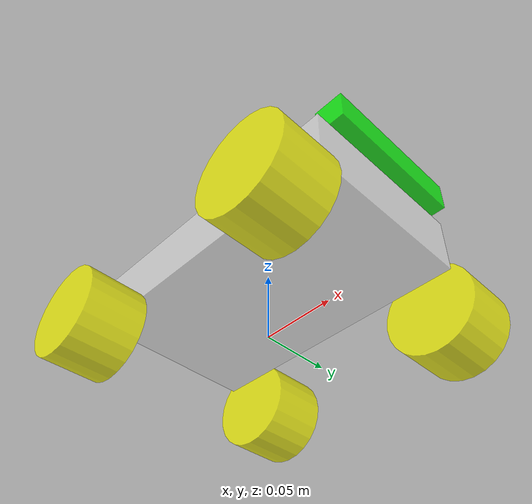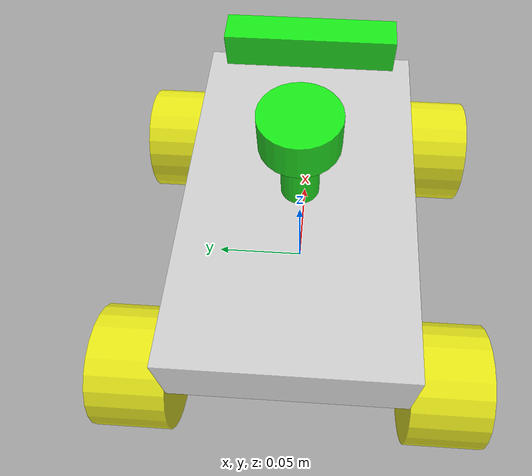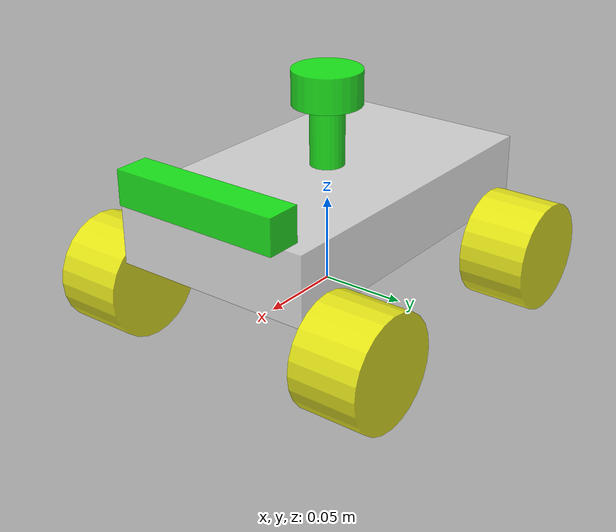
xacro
<?xml version="1.0"?>
<robot xmlns:xacro="http://www.ros.org/wiki/xacro" name="fishbot">
    <!-- 复用基础底盘和传感器模块 -->
    <xacro:include filename="$(find gazebo_simulation)/urdf/robot_ackermann/base.urdf.xacro" />
    <xacro:include filename="$(find gazebo_simulation)/urdf/robot_ackermann/sensor/imu.urdf.xacro" />
    <xacro:include filename="$(find gazebo_simulation)/urdf/robot_ackermann/sensor/laser.urdf.xacro" />
    <xacro:include filename="$(find gazebo_simulation)/urdf/robot_ackermann/sensor/camera.urdf.xacro" />

    <!-- 阿克曼转向执行器 -->
    <xacro:include filename="$(find gazebo_simulation)/urdf/robot_ackermann/actuator/steering_wheel.urdf.xacro" />
    <xacro:include filename="$(find gazebo_simulation)/urdf/robot_ackermann/actuator/rear_wheel.urdf.xacro" />

    <!-- Gazebo 传感器插件 -->
    <xacro:include filename="$(find gazebo_simulation)/urdf/robot_ackermann/plugins/gazebo_sensor_plugin.xacro" />

    <!-- ROS 2 Control -->
    <xacro:include filename="$(find gazebo_simulation)/urdf/robot_ackermann/robot.ros2_control.xacro" />

    <!-- 实例化 -->
    <xacro:base_xacro length="0.20" width="0.12" height="0.04" />
    <xacro:imu_xacro xyz="0 0 0.006" />
    <xacro:laser_xacro xyz="0 0 0.04" />
    <xacro:camera_xacro xyz="0.10 0 0.03" />

    <!-- 前转向轮 (wheelbase/2 = 0.08m 前方) -->
    <xacro:steering_wheel_xacro wheel_name="front_left_wheel" xyz="0.08 0.08 -0.04" />
    <xacro:steering_wheel_xacro wheel_name="front_right_wheel" xyz="0.08 -0.08 -0.04" />

    <!-- 后驱动轮 (wheelbase/2 = 0.08m 后方) -->
    <xacro:rear_wheel_xacro wheel_name="rear_left_wheel" xyz="-0.08 0.08 -0.04" />
    <xacro:rear_wheel_xacro wheel_name="rear_right_wheel" xyz="-0.08 -0.08 -0.04" />

    <xacro:gazebo_sensor_plugin />
    <xacro:robot_ros2_control />
</robot>

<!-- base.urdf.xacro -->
<robot xmlns:xacro="http://www.ros.org/wiki/xacro" >
<xacro:include filename="$(find gazebo_simulation)/urdf/robot_ackermann/common_inertia.xacro" />
    <xacro:macro name="base_xacro" params="length width height">
        <link name="base_footprint" />
        <link name="base_link">
            <visual>
                <origin xyz="0 0 0" rpy="0 0 0" />
                <geometry>
                    <box size="${length} ${width} ${height}" />
                </geometry>
                <material name="white">
                    <color rgba="1.0 1.0 1.0 0.5" />
                </material>
            </visual>
            <collision>
                <origin xyz="0 0 0" rpy="0 0 0" />
                <geometry>
                    <box size="${length} ${width} ${height}" />
                </geometry>
                <material name="white">
                    <color rgba="1.0 1.0 1.0 0.5" />
                </material>
            </collision>
            <xacro:box_inertia m="1.0" w="${length}" h="${width}" d="${height}" />
        </link>
        <joint name="base_joint" type="fixed">
            <parent link="base_footprint" />
            <child link="base_link" />
            <origin xyz="0.0 0.0 ${height/2.0+0.032-0.001}" rpy="0 0 0"/>
        </joint>
    </xacro:macro>
</robot>

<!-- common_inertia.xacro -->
<robot xmlns:xacro="http://www.ros.org/wiki/xacro" >
    <xacro:macro name="box_inertia" params="m w h d">
        <inertial>
            <mass value="${m}" />
            <inertia ixx="${(m/12)*(h*h+d*d)}" ixy="0.0" ixz="0.0" iyy="${(m/12)*(w*w+d*d)}" iyz="0.0" izz="${(m/12)*(w*w+h*h)}" />
        </inertial>
    </xacro:macro>

    <xacro:macro name="cylinder_inertia" params="m r h">
        <inertial>
            <mass value="${m}" />
            <inertia ixx="${(m/12)*(3*r*r + h*h)}" ixy="0.0" ixz="0.0" iyy="${(m/12)*(3*r*r + h*h)}" iyz="0.0" izz="${(m/12)*(r*r)}" />
        </inertial>
    </xacro:macro>

    <xacro:macro name="sphere_inertia" params="m r">
        <inertial>
            <mass value="${m}" />
            <inertia ixx="${(m*2/5)*(r*r)}" ixy="0.0" ixz="0.0" iyy="${(m*2/5)*(r*r)}" iyz="0.0" izz="${(m*2/5)*(r*r)}" />
        </inertial>
    </xacro:macro>
</robot>

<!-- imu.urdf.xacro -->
<robot xmlns:xacro="http://www.ros.org/wiki/xacro" >
<xacro:include filename="$(find gazebo_simulation)/urdf/robot_ackermann/common_inertia.xacro" />
    <xacro:macro name="imu_xacro" params="xyz">
        <link name="imu_link">
            <visual>
                <origin xyz="0 0 0" rpy="0 0 0" />
                <geometry>
                    <box size="0.02 0.02 0.02" />
                </geometry>
                <material name="black">
                    <color rgba="0.0 0.0 0.0 0.5" />
                </material>
            </visual>
            <collision>
                <origin xyz="0 0 0" rpy="0 0 0" />
                <geometry>
                    <box size="0.02 0.02 0.02" />
                </geometry>
                <material name="black">
                    <color rgba="0.0 0.0 0.0 0.5" />
                </material>
            </collision>
            <xacro:box_inertia m="0.02" w="0.02" h="0.02" d="0.02" />
        </link>
        <joint name="imu_joint" type="fixed">
            <parent link="base_link" />
            <child link="imu_link" />
            <origin xyz="${xyz}" />
        </joint>

        <gazebo reference="imu_link">
            <material>Gazebo/Black</material>
        </gazebo>

    </xacro:macro>
</robot>

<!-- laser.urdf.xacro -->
<robot xmlns:xacro="http://www.ros.org/wiki/xacro" >
<xacro:include filename="$(find gazebo_simulation)/urdf/robot_ackermann/common_inertia.xacro" />
    <xacro:macro name="laser_xacro" params="xyz">
        <link name="laser_cylinder_link">
            <visual>
                <origin xyz="0 0 0" rpy="0 0 0" />
                <geometry>
                    <cylinder length="0.05" radius="0.01" />
                </geometry>
                <material name="green">
                    <color rgba="0.0 1.0 0.0 0.8" />
                </material>
            </visual>
            <collision>
                <origin xyz="0 0 0" rpy="0 0 0" />
                <geometry>
                    <cylinder length="0.05" radius="0.01" />
                </geometry>
                <material name="green">
                    <color rgba="0.0 1.0 0.0 0.8" />
                </material>
            </collision>
            <xacro:cylinder_inertia m="0.03" r="0.01" h="0.05" />
        </link>
        <joint name="laser_cylinder_joint" type="fixed">
            <parent link="base_link" />
            <child link="laser_cylinder_link" />
            <origin xyz="${xyz}" />
        </joint>
        <link name="laser_link">
            <visual>
                <origin xyz="0 0 0" rpy="0 0 0" />
                <geometry>
                    <cylinder length="0.02" radius="0.02" />
                </geometry>
                <material name="green">
                    <color rgba="0.0 1.0 0.0 0.8" />
                </material>
            </visual>
            <collision>
                <origin xyz="0 0 0" rpy="0 0 0" />
                <geometry>
                    <cylinder length="0.02" radius="0.02" />
                </geometry>
                <material name="green">
                    <color rgba="0.0 1.0 0.0 0.8" />
                </material>
            </collision>
            <xacro:cylinder_inertia m="0.07" r="0.02" h="0.02" />
        </link>
        <joint name="laser_joint" type="fixed">
            <parent link="laser_cylinder_link" />
            <child link="laser_link" />
            <origin xyz="0 0 0.025" />
        </joint>

        <gazebo reference="laser_cylinder_link">
            <material>Gazebo/Black</material>
        </gazebo>
        <gazebo reference="laser_link">
            <material>Gazebo/Black</material>
        </gazebo>

    </xacro:macro>
</robot>

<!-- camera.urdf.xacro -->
<robot xmlns:xacro="http://www.ros.org/wiki/xacro" >
<xacro:include filename="$(find gazebo_simulation)/urdf/robot_ackermann/common_inertia.xacro" />
    <xacro:macro name="camera_xacro" params="xyz">
        <link name="camera_link">
            <visual>
                <origin xyz="0 0 0" rpy="0 0 0" />
                <geometry>
                    <box size="0.02 0.10 0.02" />
                </geometry>
                <material name="green">
                    <color rgba="0.0 1.0 0.0 0.8" />
                </material>
            </visual>
            <collision>
                <origin xyz="0 0 0" rpy="0 0 0" />
                <geometry>
                    <box size="0.02 0.10 0.02" />
                </geometry>
                <material name="green">
                    <color rgba="0.0 1.0 0.0 0.8" />
                </material>
            </collision>
            <xacro:box_inertia m="0.07" w="0.02" h="0.10" d="0.02" />
        </link>
        <joint name="camera_joint" type="fixed">
            <parent link="base_link" />
            <child link="camera_link" />
            <origin xyz="${xyz}" />
        </joint>
        <link name="camera_optical_link"> </link>
        <joint name="camera_optical_joint" type="fixed">
            <parent link="camera_link" />
            <child link="camera_optical_link" />
            <origin xyz="0 0 0" rpy="${-pi/2} 0 ${-pi/2}" />
        </joint>
    </xacro:macro>
</robot>

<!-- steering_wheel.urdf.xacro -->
<robot xmlns:xacro="http://www.ros.org/wiki/xacro">
<xacro:include filename="$(find gazebo_simulation)/urdf/robot_ackermann/common_inertia.xacro" />

<xacro:macro name="steering_wheel_xacro" params="wheel_name xyz">
    <!-- 转向关节 (revolute, 绕Z轴旋转) -->
    <joint name="${wheel_name}_steering_joint" type="revolute">
        <parent link="base_link" />
        <child link="${wheel_name}_steering_link" />
        <origin xyz="${xyz}" />
        <axis xyz="0 0 1" />
        <limit lower="-0.5" upper="0.5" effort="1.0" velocity="1.0" />
    </joint>

    <!-- 转向链接 -->
    <link name="${wheel_name}_steering_link">
        <xacro:box_inertia m="0.01" w="0.01" h="0.01" d="0.01" />
    </link>

    <!-- 轮子关节 (continuous, 绕Y轴旋转) -->
    <joint name="${wheel_name}_joint" type="continuous">
        <parent link="${wheel_name}_steering_link" />
        <child link="${wheel_name}_link" />
        <origin xyz="0 0 0" />
        <axis xyz="0 1 0" />
    </joint>

    <!-- 轮子链接 (复用现有轮子尺寸) -->
    <link name="${wheel_name}_link">
        <visual>
            <origin xyz="0 0 0" rpy="1.57079 0 0" />
            <geometry>
                <cylinder length="0.04" radius="0.032" />
            </geometry>
            <material name="yellow">
                <color rgba="1.0 1.0 0.0 0.8" />
            </material>
        </visual>
        <collision>
            <origin xyz="0 0 0" rpy="1.57079 0 0" />
            <geometry>
                <cylinder length="0.04" radius="0.032" />
            </geometry>
        </collision>
        <xacro:cylinder_inertia m="0.05" r="0.032" h="0.04" />
    </link>

    <gazebo reference="${wheel_name}_link">
        <mu1 value="20.0" />
        <mu2 value="20.0" />
    </gazebo>
</xacro:macro>
</robot>

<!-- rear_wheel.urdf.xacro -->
<robot xmlns:xacro="http://www.ros.org/wiki/xacro">
<xacro:include filename="$(find gazebo_simulation)/urdf/robot_ackermann/common_inertia.xacro" />

<xacro:macro name="rear_wheel_xacro" params="wheel_name xyz">
    <link name="${wheel_name}_link">
        <visual>
            <origin xyz="0 0 0" rpy="1.57079 0 0" />
            <geometry>
                <cylinder length="0.04" radius="0.032" />
            </geometry>
            <material name="yellow">
                <color rgba="1.0 1.0 0.0 0.8" />
            </material>
        </visual>
        <collision>
            <origin xyz="0 0 0" rpy="1.57079 0 0" />
            <geometry>
                <cylinder length="0.04" radius="0.032" />
            </geometry>
        </collision>
        <xacro:cylinder_inertia m="0.05" r="0.032" h="0.04" />
    </link>

    <joint name="${wheel_name}_joint" type="continuous">
        <parent link="base_link" />
        <child link="${wheel_name}_link" />
        <origin xyz="${xyz}" />
        <axis xyz="0 1 0" />
    </joint>

    <gazebo reference="${wheel_name}_link">
        <mu1 value="20.0" />
        <mu2 value="20.0" />
    </gazebo>
</xacro:macro>
</robot>
